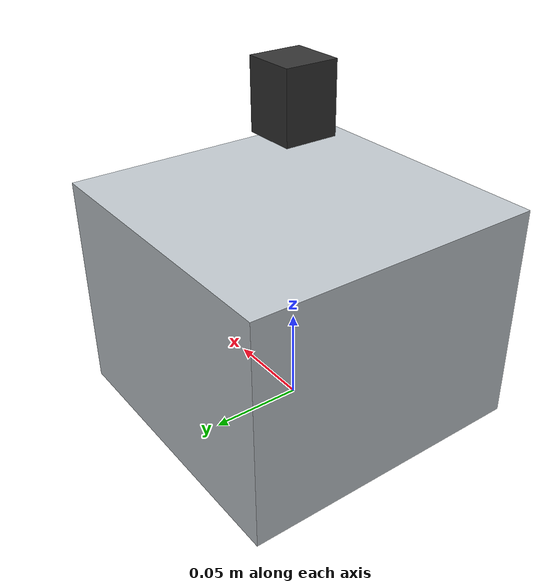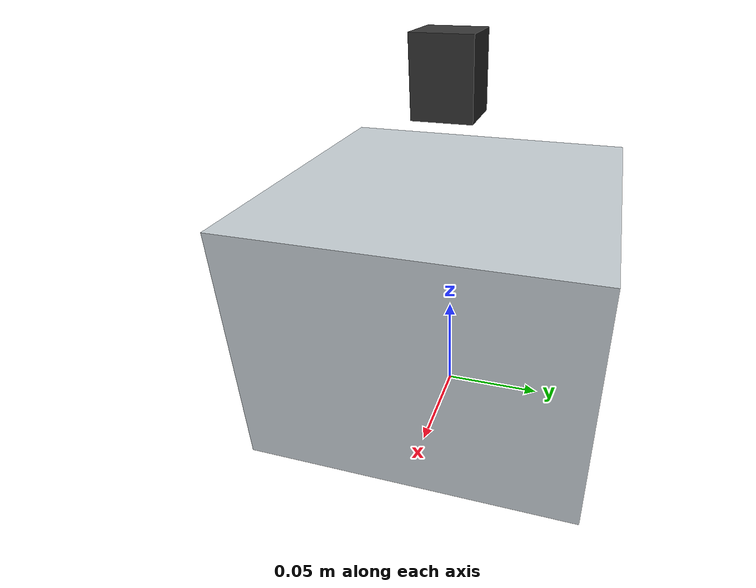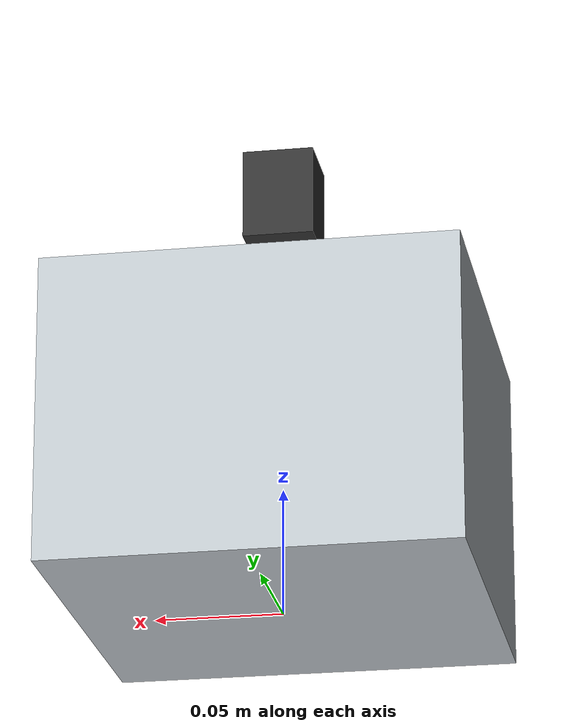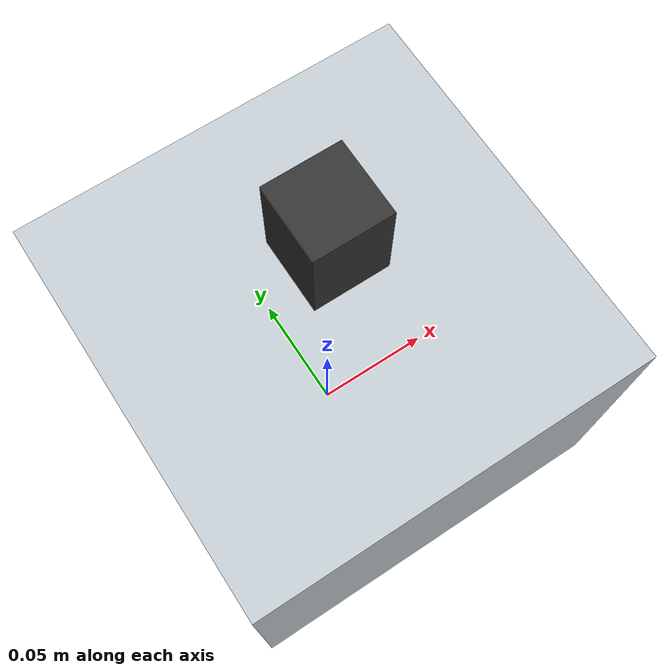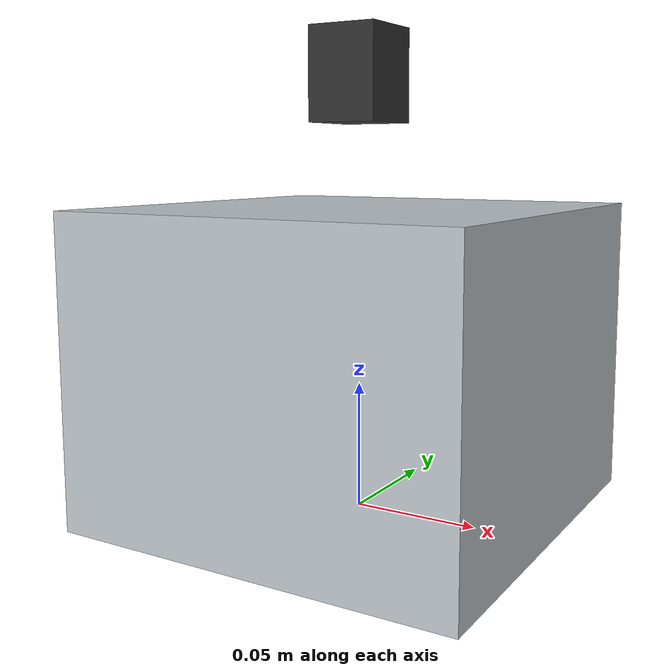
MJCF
<?xml version="1.0" encoding="utf-8"?>
<mujoco model="reagent_mixing_paddle">
  <compiler angle="radian" autolimits="true"/>
  <default>
    <default class="body"><geom contype="1" conaffinity="1"/></default>
  </default>
  <worldbody>
    <body name="base">
      <geom type="box" size="0.08 0.08 0.06" pos="0 0 0.06" rgba="0.75 0.78 0.8 1" class="body"/>
      <body name="part" pos="0.0 0.0 0.17">
        <joint name="part_joint" type="slide" axis="0 0 1" range="-0.05 0.0" damping="1.0" frictionloss="0.3"/>
  <geom name="part_body" type="box" size="0.014 0.014 0.018" pos="0 0 0" rgba="0.2 0.2 0.2 1" class="body"/>
        <site name="grasp_site" pos="0 0 0" size="0.005" rgba="1 0 0 1" group="4"/>
      </body>
    </body>
  </worldbody>
</mujoco>
